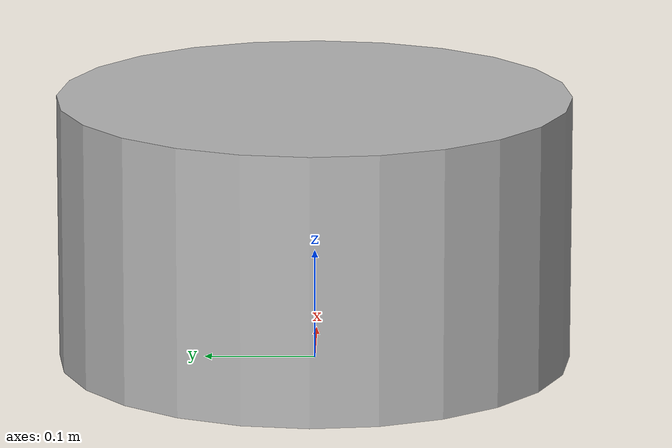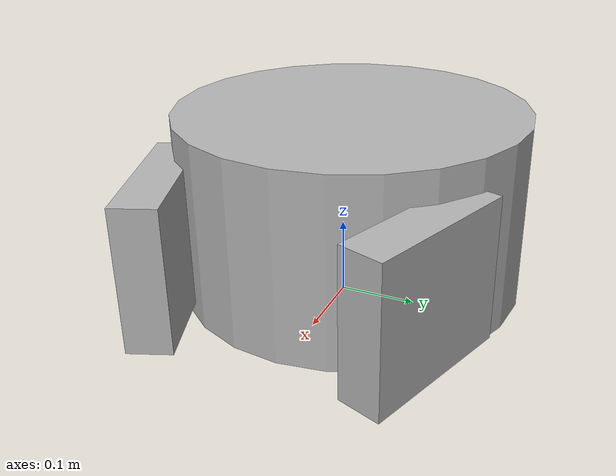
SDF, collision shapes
<?xml version="1.0" encoding="UTF-8"?>
<sdf version="1.11">
    <model name="rival2">
        <static>false</static>
        <link name="chassis">
            <pose>0 0 0.01 0 0 0</pose>

            <inertial>
                <mass>39</mass>
                <pose>0 0 0.07 0 0 0</pose>
                <inertia>
                    <ixx>0.85</ixx>
                    <ixy>0</ixy>
                    <ixz>0</ixz>
                    <iyy>0.85</iyy>
                    <iyz>0</iyz>
                    <izz>1.625</izz>
                </inertia>
            </inertial>

            <collision name="body_collision">
                <pose>-0.03 0 0.12 0 0 0</pose>
                <geometry>
                    <cylinder>
                        <radius>0.23</radius>
                        <length>0.24</length>
                    </cylinder>
                </geometry>
                <surface>
                    <bounce>
                        <restitution_coefficient>0.0</restitution_coefficient>
                        <threshold>100000</threshold>
                    </bounce>
                    <friction>
                        <ode>
                            <mu>0.4</mu>
                            <mu2>0.4</mu2>
                        </ode>
                    </friction>
                    <contact>
                        <ode>
                            <max_vel>0.2</max_vel>
                            <min_depth>0.002</min_depth>
                        </ode>
                    </contact>
                </surface>
            </collision>

            <collision name="front_left_guide_collision">
                <pose>0.17 0.16 0.11 0 0 -0.35</pose>
                <geometry>
                    <box>
                        <size>0.20 0.055 0.18</size>
                    </box>
                </geometry>
                <surface>
                    <bounce>
                        <restitution_coefficient>0.0</restitution_coefficient>
                        <threshold>100000</threshold>
                    </bounce>
                    <friction>
                        <ode>
                            <mu>0.6</mu>
                            <mu2>0.6</mu2>
                        </ode>
                    </friction>
                    <contact>
                        <ode>
                            <max_vel>0.2</max_vel>
                            <min_depth>0.002</min_depth>
                        </ode>
                    </contact>
                </surface>
            </collision>

            <collision name="front_right_guide_collision">
                <pose>0.17 -0.16 0.11 0 0 0.35</pose>
                <geometry>
                    <box>
                        <size>0.20 0.055 0.18</size>
                    </box>
                </geometry>
                <surface>
                    <bounce>
                        <restitution_coefficient>0.0</restitution_coefficient>
                        <threshold>100000</threshold>
                    </bounce>
                    <friction>
                        <ode>
                            <mu>0.6</mu>
                            <mu2>0.6</mu2>
                        </ode>
                    </friction>
                    <contact>
                        <ode>
                            <max_vel>0.2</max_vel>
                            <min_depth>0.002</min_depth>
                        </ode>
                    </contact>
                </surface>
            </collision>

            <visual name="visual">
                <pose>0 0 0 0 0 0</pose>
                <geometry>
                    <mesh>
                        <scale>-1.1 1.1 1.4</scale>
                        <uri>model://rival2/meshes/rival_frame2.dae</uri>
                    </mesh>
                </geometry>
            </visual>

            <self_collide>false</self_collide>
        </link>

        <plugin
            filename="gz-sim-velocity-control-system"
            name="gz::sim::systems::VelocityControl">

            <link_name>chassis</link_name>

        </plugin>

        <plugin
            filename="gz-sim-pose-publisher-system"
            name="gz::sim::systems::PosePublisher">

            <publish_model_pose>true</publish_model_pose>
            <publish_link_pose>false</publish_link_pose>
            <publish_collision_pose>false</publish_collision_pose>
            <publish_visual_pose>false</publish_visual_pose>

            <use_pose_vector_msg>true</use_pose_vector_msg>

            <update_frequency>50</update_frequency>
        </plugin>

        <plugin
            filename="libnubot_plugin.so"
            name="nubot_plugins::NubotGazebo">
            <ball_name>football</ball_name>
            <cyan_prefix>nubot</cyan_prefix>
            <magenta_prefix>rival</magenta_prefix>
            <flip_cord>true</flip_cord>
        </plugin>
    </model>
</sdf>
